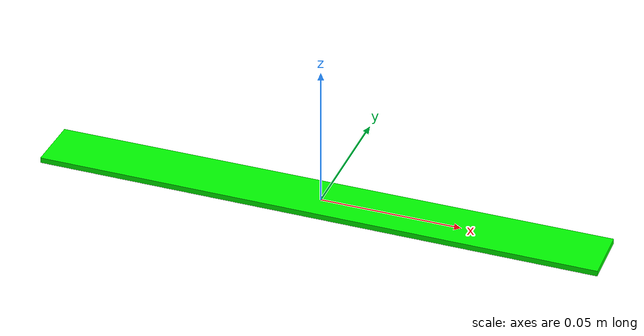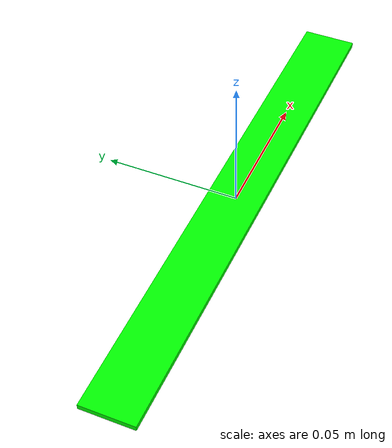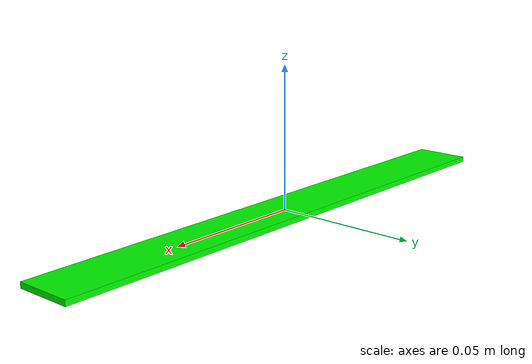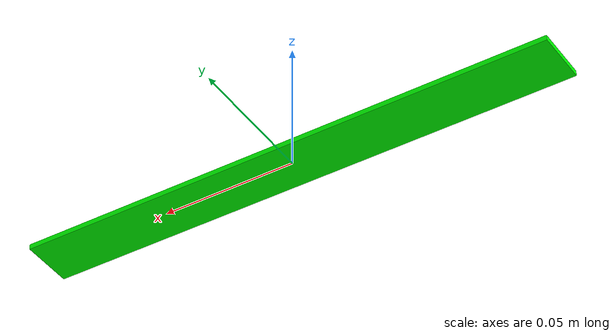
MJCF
<mujoco model="line">
  <compiler angle="radian" autolimits="true" />
  <asset>
    <texture type="2d" name="green" builtin="flat" width="1" height="1" rgb1="0 1 0"/>
    <material name="green" texture="green" rgba="1 1 1 1"/>
  </asset>
  <worldbody>
    <body name="baseLink">
      <geom type="box" size="0.1 0.01 0.001" material="green"/>
    </body>
  </worldbody>
</mujoco>
